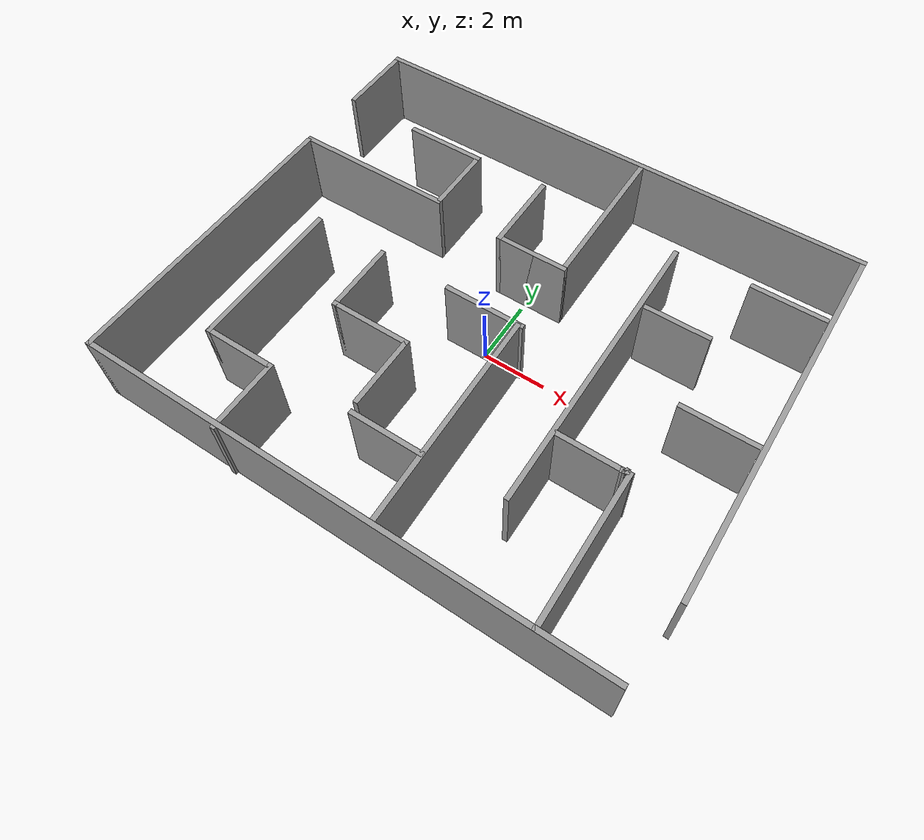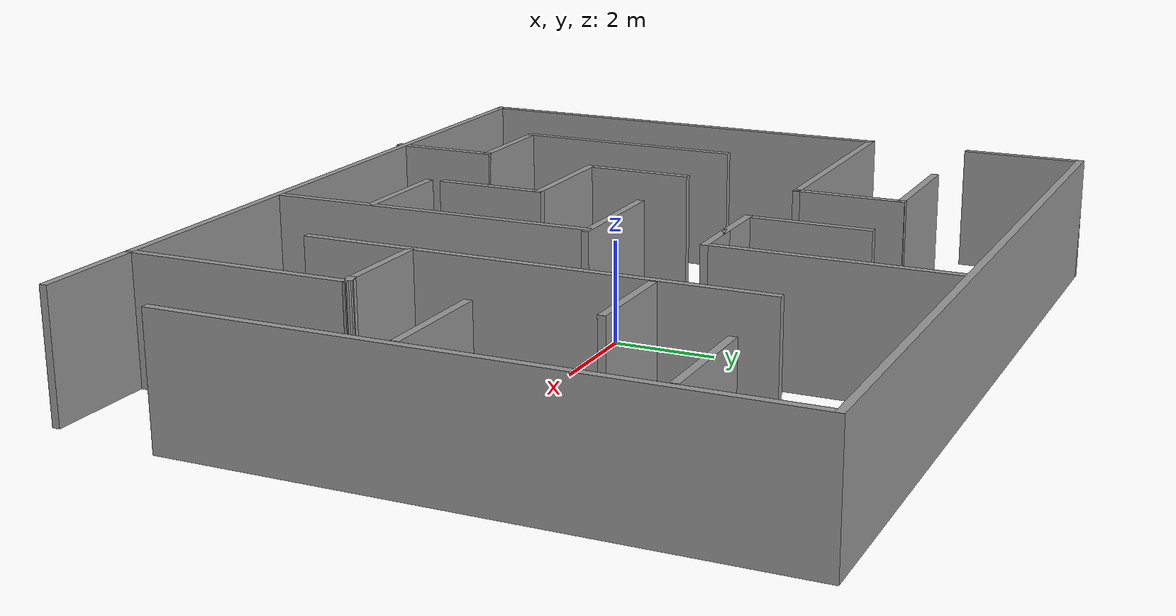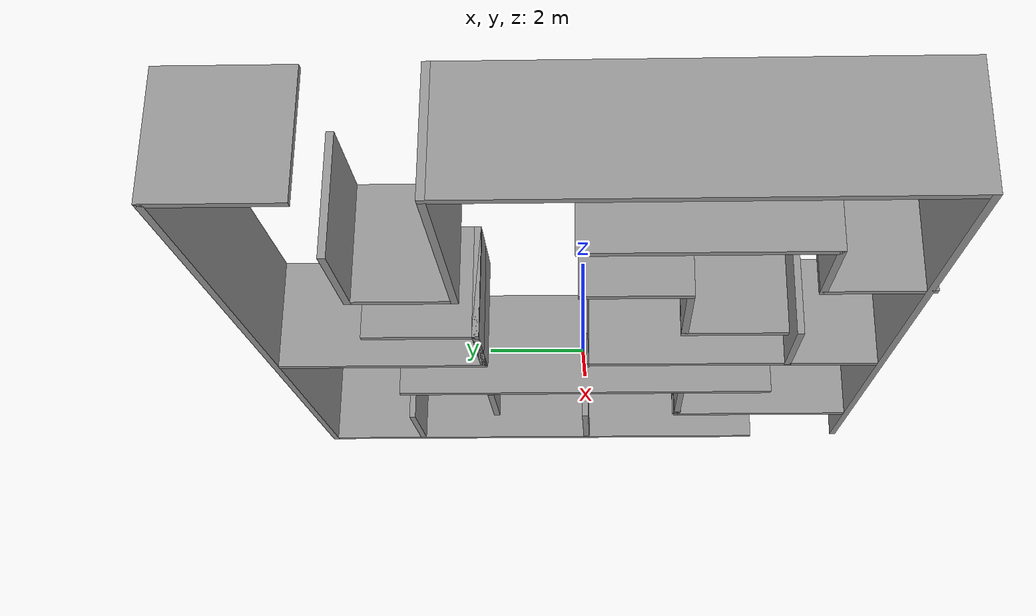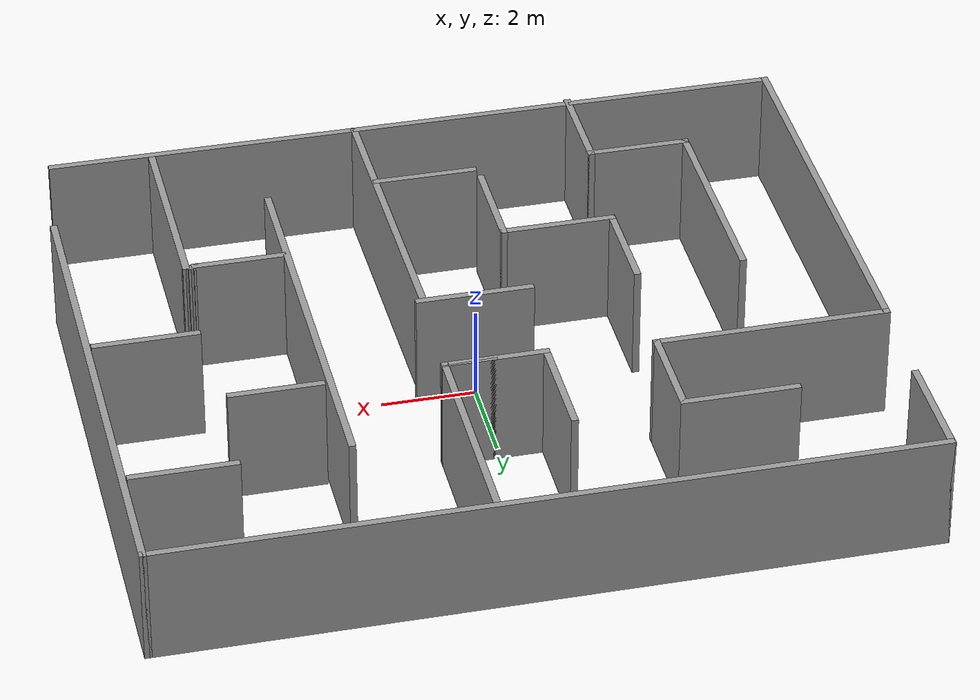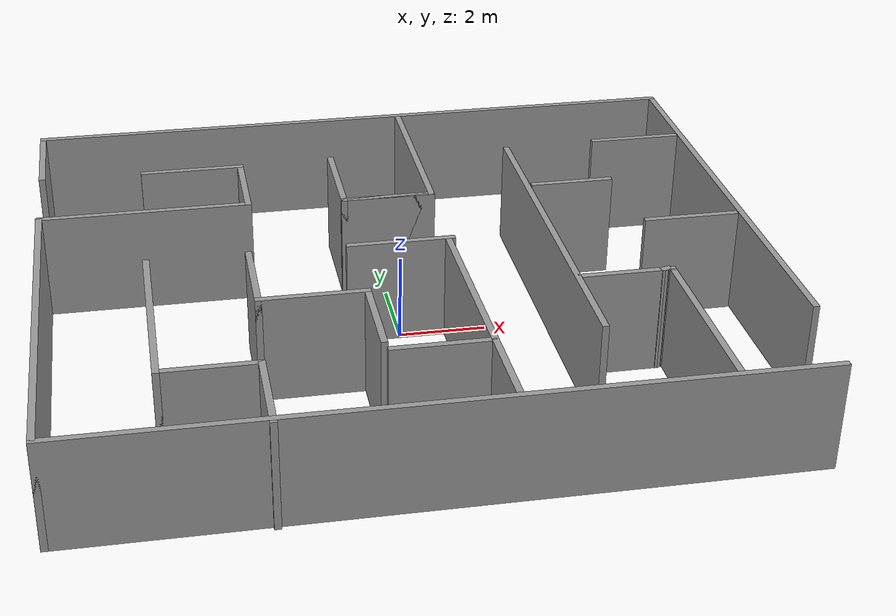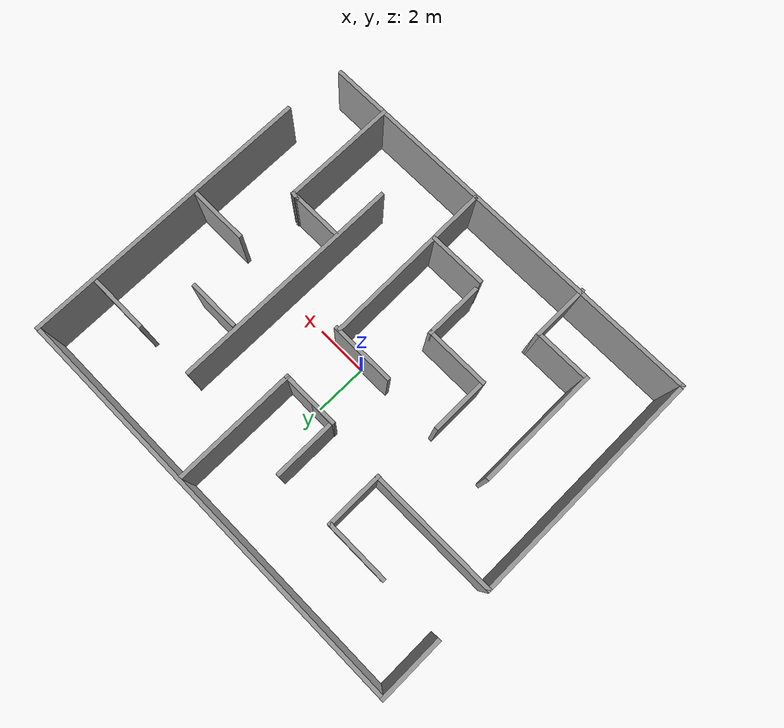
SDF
<?xml version='1.0'?>
<sdf version='1.7'>
  <model name='trial_maze_1'>
    <pose>0.013553 0.12599 0 0 -0 0</pose>
    <link name='Wall_20'>
      <collision name='Wall_20_Collision'>
        <geometry>
          <box>
            <size>2.5 0.15 2.5</size>
          </box>
        </geometry>
        <pose>0 0 1.25 0 -0 0</pose>
      </collision>
      <visual name='Wall_20_Visual'>
        <pose>0 0 1.25 0 -0 0</pose>
        <geometry>
          <box>
            <size>2.5 0.15 2.5</size>
          </box>
        </geometry>
        <material>
          <script>
            <uri>file://media/materials/scripts/gazebo.material</uri>
            <name>Gazebo/Grey</name>
          </script>
          <ambient>1 1 1 1</ambient>
        </material>
        <meta>
          <layer>0</layer>
        </meta>
      </visual>
      <pose>-8.02592 5.68619 0 0 -0 1.5708</pose>
    </link>
    <link name='Wall_21'>
      <collision name='Wall_21_Collision'>
        <geometry>
          <box>
            <size>16.25 0.15 2.5</size>
          </box>
        </geometry>
        <pose>0 0 1.25 0 -0 0</pose>
      </collision>
      <visual name='Wall_21_Visual'>
        <pose>0 0 1.25 0 -0 0</pose>
        <geometry>
          <box>
            <size>16.25 0.15 2.5</size>
          </box>
        </geometry>
        <material>
          <script>
            <uri>file://media/materials/scripts/gazebo.material</uri>
            <name>Gazebo/Grey</name>
          </script>
          <ambient>1 1 1 1</ambient>
        </material>
        <meta>
          <layer>0</layer>
        </meta>
      </visual>
      <pose>0.024078 6.86119 0 0 -0 0</pose>
    </link>
    <link name='Wall_22'>
      <collision name='Wall_22_Collision'>
        <geometry>
          <box>
            <size>11.5 0.15 2.5</size>
          </box>
        </geometry>
        <pose>0 0 1.25 0 -0 0</pose>
      </collision>
      <visual name='Wall_22_Visual'>
        <pose>0 0 1.25 0 -0 0</pose>
        <geometry>
          <box>
            <size>11.5 0.15 2.5</size>
          </box>
        </geometry>
        <material>
          <script>
            <uri>file://media/materials/scripts/gazebo.material</uri>
            <name>Gazebo/Grey</name>
          </script>
          <ambient>1 1 1 1</ambient>
        </material>
        <meta>
          <layer>0</layer>
        </meta>
      </visual>
      <pose>8.07408 1.18619 0 0 -0 -1.5708</pose>
    </link>
    <link name='Wall_24'>
      <collision name='Wall_24_Collision'>
        <geometry>
          <box>
            <size>2.5 0.15 2.5</size>
          </box>
        </geometry>
        <pose>0 0 1.25 0 -0 0</pose>
      </collision>
      <visual name='Wall_24_Visual'>
        <pose>0 0 1.25 0 -0 0</pose>
        <geometry>
          <box>
            <size>2.5 0.15 2.5</size>
          </box>
        </geometry>
        <material>
          <script>
            <uri>file://media/materials/scripts/gazebo.material</uri>
            <name>Gazebo/Grey</name>
          </script>
          <ambient>1 1 1 1</ambient>
        </material>
        <meta>
          <layer>0</layer>
        </meta>
      </visual>
      <pose>-4.39908 4.41867 0 0 -0 0</pose>
    </link>
    <link name='Wall_25'>
      <collision name='Wall_25_Collision'>
        <geometry>
          <box>
            <size>2.25 0.15 2.5</size>
          </box>
        </geometry>
        <pose>0 0 1.25 0 -0 0</pose>
      </collision>
      <visual name='Wall_25_Visual'>
        <pose>0 0 1.25 0 -0 0</pose>
        <geometry>
          <box>
            <size>2.25 0.15 2.5</size>
          </box>
        </geometry>
        <material>
          <script>
            <uri>file://media/materials/scripts/gazebo.material</uri>
            <name>Gazebo/Grey</name>
          </script>
          <ambient>1 1 1 1</ambient>
        </material>
        <meta>
          <layer>0</layer>
        </meta>
      </visual>
      <pose>-3.22408 3.36867 0 0 -0 -1.5708</pose>
    </link>
    <link name='Wall_26'>
      <collision name='Wall_26_Collision'>
        <geometry>
          <box>
            <size>5 0.15 2.5</size>
          </box>
        </geometry>
        <pose>0 0 1.25 0 -0 0</pose>
      </collision>
      <visual name='Wall_26_Visual'>
        <pose>0 0 1.25 0 -0 0</pose>
        <geometry>
          <box>
            <size>5 0.15 2.5</size>
          </box>
        </geometry>
        <material>
          <script>
            <uri>file://media/materials/scripts/gazebo.material</uri>
            <name>Gazebo/Grey</name>
          </script>
          <ambient>1 1 1 1</ambient>
        </material>
        <meta>
          <layer>0</layer>
        </meta>
      </visual>
      <pose>-5.64908 2.31867 0 0 -0 3.14159</pose>
    </link>
    <link name='Wall_27'>
      <collision name='Wall_27_Collision'>
        <geometry>
          <box>
            <size>9.25 0.15 2.5</size>
          </box>
        </geometry>
        <pose>0 0 1.25 0 -0 0</pose>
      </collision>
      <visual name='Wall_27_Visual'>
        <pose>0 0 1.25 0 -0 0</pose>
        <geometry>
          <box>
            <size>9.25 0.15 2.5</size>
          </box>
        </geometry>
        <material>
          <script>
            <uri>file://media/materials/scripts/gazebo.material</uri>
            <name>Gazebo/Grey</name>
          </script>
          <ambient>1 1 1 1</ambient>
        </material>
        <meta>
          <layer>0</layer>
        </meta>
      </visual>
      <pose>-8.07408 -2.23133 0 0 -0 -1.5708</pose>
    </link>
    <link name='Wall_28'>
      <collision name='Wall_28_Collision'>
        <geometry>
          <box>
            <size>16 0.15 2.5</size>
          </box>
        </geometry>
        <pose>0 0 1.25 0 -0 0</pose>
      </collision>
      <visual name='Wall_28_Visual'>
        <pose>0 0 1.25 0 -0 0</pose>
        <geometry>
          <box>
            <size>16 0.15 2.5</size>
          </box>
        </geometry>
        <material>
          <script>
            <uri>file://media/materials/scripts/gazebo.material</uri>
            <name>Gazebo/Grey</name>
          </script>
          <ambient>1 1 1 1</ambient>
        </material>
        <meta>
          <layer>0</layer>
        </meta>
      </visual>
      <pose>-0.149078 -6.78133 0 0 -0 0</pose>
    </link>
    <link name='Wall_30'>
      <collision name='Wall_30_Collision'>
        <geometry>
          <box>
            <size>4.75 0.15 2.5</size>
          </box>
        </geometry>
        <pose>0 0 1.25 0 -0 0</pose>
      </collision>
      <visual name='Wall_30_Visual'>
        <pose>0 0 1.25 0 -0 0</pose>
        <geometry>
          <box>
            <size>4.75 0.15 2.5</size>
          </box>
        </geometry>
        <material>
          <script>
            <uri>file://media/materials/scripts/gazebo.material</uri>
            <name>Gazebo/Grey</name>
          </script>
          <ambient>1 1 1 1</ambient>
        </material>
        <meta>
          <layer>0</layer>
        </meta>
      </visual>
      <pose>1.1338 4.43173 0 0 -0 -1.5708</pose>
    </link>
    <link name='Wall_31'>
      <collision name='Wall_31_Collision'>
        <geometry>
          <box>
            <size>2.25 0.15 2.5</size>
          </box>
        </geometry>
        <pose>0 0 1.25 0 -0 0</pose>
      </collision>
      <visual name='Wall_31_Visual'>
        <pose>0 0 1.25 0 -0 0</pose>
        <geometry>
          <box>
            <size>2.25 0.15 2.5</size>
          </box>
        </geometry>
        <material>
          <script>
            <uri>file://media/materials/scripts/gazebo.material</uri>
            <name>Gazebo/Grey</name>
          </script>
          <ambient>1 1 1 1</ambient>
        </material>
        <meta>
          <layer>0</layer>
        </meta>
      </visual>
      <pose>0.083798 2.13173 0 0 -0 3.14159</pose>
    </link>
    <link name='Wall_32'>
      <collision name='Wall_32_Collision'>
        <geometry>
          <box>
            <size>2.5 0.15 2.5</size>
          </box>
        </geometry>
        <pose>0 0 1.25 0 -0 0</pose>
      </collision>
      <visual name='Wall_32_Visual'>
        <pose>0 0 1.25 0 -0 0</pose>
        <geometry>
          <box>
            <size>2.5 0.15 2.5</size>
          </box>
        </geometry>
        <material>
          <script>
            <uri>file://media/materials/scripts/gazebo.material</uri>
            <name>Gazebo/Grey</name>
          </script>
          <ambient>1 1 1 1</ambient>
        </material>
        <meta>
          <layer>0</layer>
        </meta>
      </visual>
      <pose>-0.966202 3.30673 0 0 -0 1.5708</pose>
    </link>
    <link name='Wall_34'>
      <collision name='Wall_34_Collision'>
        <geometry>
          <box>
            <size>4.75 0.15 2.5</size>
          </box>
        </geometry>
        <pose>0 0 1.25 0 -0 0</pose>
      </collision>
      <visual name='Wall_34_Visual'>
        <pose>0 0 1.25 0 -0 0</pose>
        <geometry>
          <box>
            <size>4.75 0.15 2.5</size>
          </box>
        </geometry>
        <material>
          <script>
            <uri>file://media/materials/scripts/gazebo.material</uri>
            <name>Gazebo/Grey</name>
          </script>
          <ambient>1 1 1 1</ambient>
        </material>
        <meta>
          <layer>0</layer>
        </meta>
      </visual>
      <pose>-5.71286 -2.46119 0 0 -0 -1.5708</pose>
    </link>
    <link name='Wall_35'>
      <collision name='Wall_35_Collision'>
        <geometry>
          <box>
            <size>2.25 0.15 2.5</size>
          </box>
        </geometry>
        <pose>0 0 1.25 0 -0 0</pose>
      </collision>
      <visual name='Wall_35_Visual'>
        <pose>0 0 1.25 0 -0 0</pose>
        <geometry>
          <box>
            <size>2.25 0.15 2.5</size>
          </box>
        </geometry>
        <material>
          <script>
            <uri>file://media/materials/scripts/gazebo.material</uri>
            <name>Gazebo/Grey</name>
          </script>
          <ambient>1 1 1 1</ambient>
        </material>
        <meta>
          <layer>0</layer>
        </meta>
      </visual>
      <pose>-4.66286 -4.76119 0 0 -0 0</pose>
    </link>
    <link name='Wall_36'>
      <collision name='Wall_36_Collision'>
        <geometry>
          <box>
            <size>2.25 0.15 2.5</size>
          </box>
        </geometry>
        <pose>0 0 1.25 0 -0 0</pose>
      </collision>
      <visual name='Wall_36_Visual'>
        <pose>0 0 1.25 0 -0 0</pose>
        <geometry>
          <box>
            <size>2.25 0.15 2.5</size>
          </box>
        </geometry>
        <material>
          <script>
            <uri>file://media/materials/scripts/gazebo.material</uri>
            <name>Gazebo/Grey</name>
          </script>
          <ambient>1 1 1 1</ambient>
        </material>
        <meta>
          <layer>0</layer>
        </meta>
      </visual>
      <pose>-3.61286 -5.81119 0 0 -0 -1.5708</pose>
    </link>
    <link name='Wall_38'>
      <collision name='Wall_38_Collision'>
        <geometry>
          <box>
            <size>2.5 0.15 2.5</size>
          </box>
        </geometry>
        <pose>0 0 1.25 0 -0 0</pose>
      </collision>
      <visual name='Wall_38_Visual'>
        <pose>0 0 1.25 0 -0 0</pose>
        <geometry>
          <box>
            <size>2.5 0.15 2.5</size>
          </box>
        </geometry>
        <material>
          <script>
            <uri>file://media/materials/scripts/gazebo.material</uri>
            <name>Gazebo/Grey</name>
          </script>
          <ambient>1 1 1 1</ambient>
        </material>
        <meta>
          <layer>0</layer>
        </meta>
      </visual>
      <pose>-0.004263 -0.161192 0 0 -0 0</pose>
    </link>
    <link name='Wall_39'>
      <collision name='Wall_39_Collision'>
        <geometry>
          <box>
            <size>6.70439 0.15 2.5</size>
          </box>
        </geometry>
        <pose>0 0 1.25 0 -0 0</pose>
      </collision>
      <visual name='Wall_39_Visual'>
        <pose>0 0 1.25 0 -0 0</pose>
        <geometry>
          <box>
            <size>6.70439 0.15 2.5</size>
          </box>
        </geometry>
        <material>
          <script>
            <uri>file://media/materials/scripts/gazebo.material</uri>
            <name>Gazebo/Grey</name>
          </script>
          <ambient>1 1 1 1</ambient>
        </material>
        <meta>
          <layer>0</layer>
        </meta>
      </visual>
      <pose>1.12448 -3.48432 0 0 -0 -1.55668</pose>
    </link>
    <link name='Wall_41'>
      <collision name='Wall_41_Collision'>
        <geometry>
          <box>
            <size>2.25 0.15 2.5</size>
          </box>
        </geometry>
        <pose>0 0 1.25 0 -0 0</pose>
      </collision>
      <visual name='Wall_41_Visual'>
        <pose>0 0 1.25 0 -0 0</pose>
        <geometry>
          <box>
            <size>2.25 0.15 2.5</size>
          </box>
        </geometry>
        <material>
          <script>
            <uri>file://media/materials/scripts/gazebo.material</uri>
            <name>Gazebo/Grey</name>
          </script>
          <ambient>1 1 1 1</ambient>
        </material>
        <meta>
          <layer>0</layer>
        </meta>
      </visual>
      <pose>-3.44606 -1.21119 0 0 -0 -1.5708</pose>
    </link>
    <link name='Wall_42'>
      <collision name='Wall_42_Collision'>
        <geometry>
          <box>
            <size>2.5 0.15 2.5</size>
          </box>
        </geometry>
        <pose>0 0 1.25 0 -0 0</pose>
      </collision>
      <visual name='Wall_42_Visual'>
        <pose>0 0 1.25 0 -0 0</pose>
        <geometry>
          <box>
            <size>2.5 0.15 2.5</size>
          </box>
        </geometry>
        <material>
          <script>
            <uri>file://media/materials/scripts/gazebo.material</uri>
            <name>Gazebo/Grey</name>
          </script>
          <ambient>1 1 1 1</ambient>
        </material>
        <meta>
          <layer>0</layer>
        </meta>
      </visual>
      <pose>-2.27106 -2.26119 0 0 -0 0</pose>
    </link>
    <link name='Wall_43'>
      <collision name='Wall_43_Collision'>
        <geometry>
          <box>
            <size>2.25 0.15 2.5</size>
          </box>
        </geometry>
        <pose>0 0 1.25 0 -0 0</pose>
      </collision>
      <visual name='Wall_43_Visual'>
        <pose>0 0 1.25 0 -0 0</pose>
        <geometry>
          <box>
            <size>2.25 0.15 2.5</size>
          </box>
        </geometry>
        <material>
          <script>
            <uri>file://media/materials/scripts/gazebo.material</uri>
            <name>Gazebo/Grey</name>
          </script>
          <ambient>1 1 1 1</ambient>
        </material>
        <meta>
          <layer>0</layer>
        </meta>
      </visual>
      <pose>-1.09606 -3.31119 0 0 -0 -1.5708</pose>
    </link>
    <link name='Wall_45'>
      <collision name='Wall_45_Collision'>
        <geometry>
          <box>
            <size>2.25 0.15 2.5</size>
          </box>
        </geometry>
        <pose>0 0 1.25 0 -0 0</pose>
      </collision>
      <visual name='Wall_45_Visual'>
        <pose>0 0 1.25 0 -0 0</pose>
        <geometry>
          <box>
            <size>2.25 0.15 2.5</size>
          </box>
        </geometry>
        <material>
          <script>
            <uri>file://media/materials/scripts/gazebo.material</uri>
            <name>Gazebo/Grey</name>
          </script>
          <ambient>1 1 1 1</ambient>
        </material>
        <meta>
          <layer>0</layer>
        </meta>
      </visual>
      <pose>0.055782 -4.69479 0 0 -0 0</pose>
    </link>
    <link name='Wall_48'>
      <collision name='Wall_48_Collision'>
        <geometry>
          <box>
            <size>2.25 0.15 2.5</size>
          </box>
        </geometry>
        <pose>0 0 1.25 0 -0 0</pose>
      </collision>
      <visual name='Wall_48_Visual'>
        <pose>0 0 1.25 0 -0 0</pose>
        <geometry>
          <box>
            <size>2.25 0.15 2.5</size>
          </box>
        </geometry>
        <material>
          <script>
            <uri>file://media/materials/scripts/gazebo.material</uri>
            <name>Gazebo/Grey</name>
          </script>
          <ambient>1 1 1 1</ambient>
        </material>
        <meta>
          <layer>0</layer>
        </meta>
      </visual>
      <pose>6.85618 4.41867 0 0 -0 0</pose>
    </link>
    <link name='Wall_50'>
      <collision name='Wall_50_Collision'>
        <geometry>
          <box>
            <size>2.25 0.15 2.5</size>
          </box>
        </geometry>
        <pose>0 0 1.25 0 -0 0</pose>
      </collision>
      <visual name='Wall_50_Visual'>
        <pose>0 0 1.25 0 -0 0</pose>
        <geometry>
          <box>
            <size>2.25 0.15 2.5</size>
          </box>
        </geometry>
        <material>
          <script>
            <uri>file://media/materials/scripts/gazebo.material</uri>
            <name>Gazebo/Grey</name>
          </script>
          <ambient>1 1 1 1</ambient>
        </material>
        <meta>
          <layer>0</layer>
        </meta>
      </visual>
      <pose>6.85618 -0.068669 0 0 -0 0</pose>
    </link>
    <link name='Wall_52'>
      <collision name='Wall_52_Collision'>
        <geometry>
          <box>
            <size>2 0.15 2.5</size>
          </box>
        </geometry>
        <pose>0 0 1.25 0 -0 0</pose>
      </collision>
      <visual name='Wall_52_Visual'>
        <pose>0 0 1.25 0 -0 0</pose>
        <geometry>
          <box>
            <size>2 0.15 2.5</size>
          </box>
        </geometry>
        <material>
          <script>
            <uri>file://media/materials/scripts/gazebo.material</uri>
            <name>Gazebo/Grey</name>
          </script>
          <ambient>1 1 1 1</ambient>
        </material>
        <meta>
          <layer>0</layer>
        </meta>
      </visual>
      <pose>4.60316 2.19813 0 0 -0 0</pose>
    </link>
    <link name='Wall_54'>
      <collision name='Wall_54_Collision'>
        <geometry>
          <box>
            <size>2 0.15 2.5</size>
          </box>
        </geometry>
        <pose>0 0 1.25 0 -0 0</pose>
      </collision>
      <visual name='Wall_54_Visual'>
        <pose>0 0 1.25 0 -0 0</pose>
        <geometry>
          <box>
            <size>2 0.15 2.5</size>
          </box>
        </geometry>
        <material>
          <script>
            <uri>file://media/materials/scripts/gazebo.material</uri>
            <name>Gazebo/Grey</name>
          </script>
          <ambient>1 1 1 1</ambient>
        </material>
        <meta>
          <layer>0</layer>
        </meta>
      </visual>
      <pose>4.51064 -2.42799 0 0 -0 0</pose>
    </link>
    <link name='Wall_55'>
      <collision name='Wall_55_Collision'>
        <geometry>
          <box>
            <size>0.25 0.15 2.5</size>
          </box>
        </geometry>
        <pose>0 0 1.25 0 -0 0</pose>
      </collision>
      <visual name='Wall_55_Visual'>
        <pose>0 0 1.25 0 -0 0</pose>
        <geometry>
          <box>
            <size>0.25 0.15 2.5</size>
          </box>
        </geometry>
        <material>
          <script>
            <uri>file://media/materials/scripts/gazebo.material</uri>
            <name>Gazebo/Grey</name>
          </script>
          <ambient>1 1 1 1</ambient>
        </material>
        <meta>
          <layer>0</layer>
        </meta>
      </visual>
      <pose>5.48394 -2.41505 0 0 -0 0.261799</pose>
    </link>
    <link name='Wall_56'>
      <collision name='Wall_56_Collision'>
        <geometry>
          <box>
            <size>0.25 0.15 2.5</size>
          </box>
        </geometry>
        <pose>0 0 1.25 0 -0 0</pose>
      </collision>
      <visual name='Wall_56_Visual'>
        <pose>0 0 1.25 0 -0 0</pose>
        <geometry>
          <box>
            <size>0.25 0.15 2.5</size>
          </box>
        </geometry>
        <material>
          <script>
            <uri>file://media/materials/scripts/gazebo.material</uri>
            <name>Gazebo/Grey</name>
          </script>
          <ambient>1 1 1 1</ambient>
        </material>
        <meta>
          <layer>0</layer>
        </meta>
      </visual>
      <pose>5.58053 -2.41505 0 0 -0 -0.261799</pose>
    </link>
    <link name='Wall_57'>
      <collision name='Wall_57_Collision'>
        <geometry>
          <box>
            <size>4.5 0.15 2.5</size>
          </box>
        </geometry>
        <pose>0 0 1.25 0 -0 0</pose>
      </collision>
      <visual name='Wall_57_Visual'>
        <pose>0 0 1.25 0 -0 0</pose>
        <geometry>
          <box>
            <size>4.5 0.15 2.5</size>
          </box>
        </geometry>
        <material>
          <script>
            <uri>file://media/materials/scripts/gazebo.material</uri>
            <name>Gazebo/Grey</name>
          </script>
          <ambient>1 1 1 1</ambient>
        </material>
        <meta>
          <layer>0</layer>
        </meta>
      </visual>
      <pose>5.62883 -4.60299 0 0 -0 -1.5708</pose>
    </link>
    <link name='Wall_59'>
      <collision name='Wall_59_Collision'>
        <geometry>
          <box>
            <size>9 0.15 2.5</size>
          </box>
        </geometry>
        <pose>0 0 1.25 0 -0 0</pose>
      </collision>
      <visual name='Wall_59_Visual'>
        <pose>0 0 1.25 0 -0 0</pose>
        <geometry>
          <box>
            <size>9 0.15 2.5</size>
          </box>
        </geometry>
        <material>
          <script>
            <uri>file://media/materials/scripts/gazebo.material</uri>
            <name>Gazebo/Grey</name>
          </script>
          <ambient>1 1 1 1</ambient>
        </material>
        <meta>
          <layer>0</layer>
        </meta>
      </visual>
      <pose>3.49312 -0.098854 0 0 -0 -1.5708</pose>
    </link>
    <link name='Wall_61'>
      <collision name='Wall_61_Collision'>
        <geometry>
          <box>
            <size>2.25 0.15 2.5</size>
          </box>
        </geometry>
        <pose>0 0 1.25 0 -0 0</pose>
      </collision>
      <visual name='Wall_61_Visual'>
        <pose>0 0 1.25 0 -0 0</pose>
        <geometry>
          <box>
            <size>2.25 0.15 2.5</size>
          </box>
        </geometry>
        <material>
          <script>
            <uri>file://media/materials/scripts/gazebo.material</uri>
            <name>Gazebo/Grey</name>
          </script>
          <ambient>1 1 1 1</ambient>
        </material>
        <meta>
          <layer>0</layer>
        </meta>
      </visual>
      <pose>0.083798 2.13173 0 0 -0 0</pose>
    </link>
    <static>1</static>
  </model>
</sdf>
